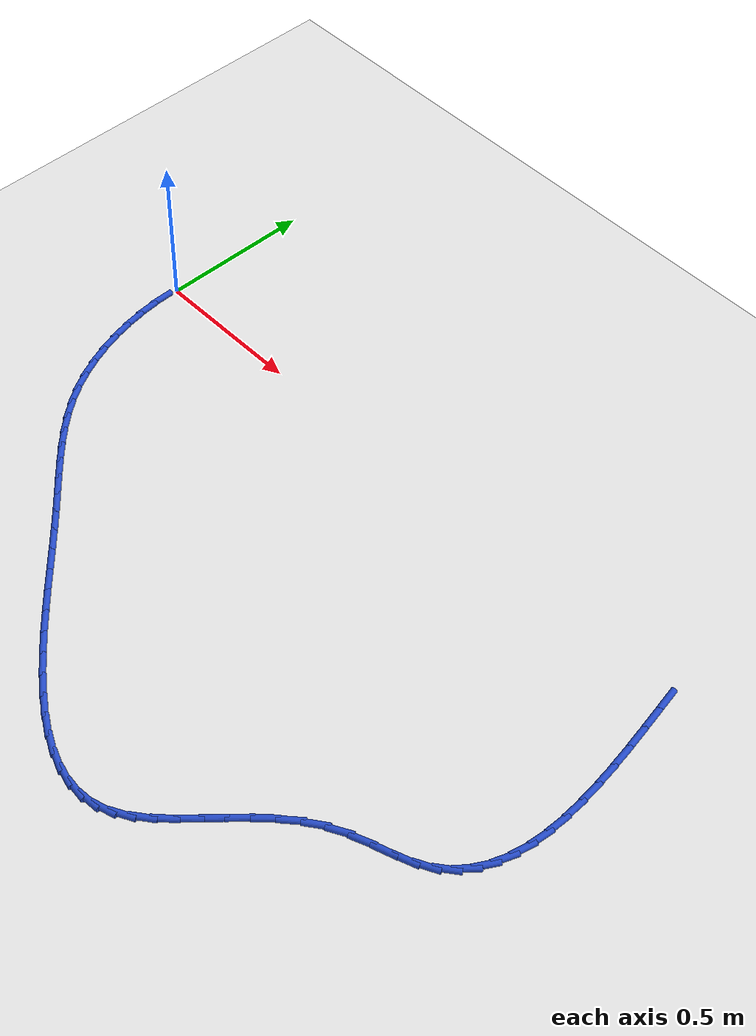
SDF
<sdf version="1.6">
 <world name="default">
  <model name="ground_plane">
   <static>1</static>
   <link name="link">
    <collision name="collision">
     <geometry><plane><normal>0 0 1</normal><size>100 100</size></plane></geometry>
     <surface><friction><ode><mu>100</mu><mu2>50</mu2></ode></friction></surface>
    </collision>
    <visual name="visual">
     <cast_shadows>0</cast_shadows>
     <geometry><plane><normal>0 0 1</normal><size>100 100</size></plane></geometry>
     <material>
      <script><uri>file://media/materials/scripts/gazebo.material</uri><name>Gazebo/WhiteGlow</name></script>
     </material>
    </visual>
   </link>
  </model>
  <model name="line">
   <link name="link_59">
    <pose>2.1289913416677932 -0.047618712083657345 0.01 0 1.57 -1.3797121177105913</pose>
    <collision name="collision">
     <geometry><cylinder><radius>0.01</radius><length>0.08</length></cylinder></geometry>
    </collision>
    <visual name="visual">
     <material>
      <script><name>Gazebo/Blue</name><uri>file://media/materials/scripts/gazebo.material</uri></script>
     </material>
     <geometry><cylinder><radius>0.01</radius><length>0.08</length></cylinder></geometry>
    </visual>
   </link>
   <link name="link_60">
    <pose>2.143507990243397 -0.12266172104317931 0.01 0 1.57 -1.3843831992801103</pose>
    <collision name="collision">
     <geometry><cylinder><radius>0.01</radius><length>0.08</length></cylinder></geometry>
    </collision>
    <visual name="visual">
     <material>
      <script><name>Gazebo/Blue</name><uri>file://media/materials/scripts/gazebo.material</uri></script>
     </material>
     <geometry><cylinder><radius>0.01</radius><length>0.08</length></cylinder></geometry>
    </visual>
   </link>
   <link name="link_61">
    <pose>2.157550200082876 -0.19711558082772612 0.01 0 1.57 -1.3963424579430452</pose>
    <collision name="collision">
     <geometry><cylinder><radius>0.01</radius><length>0.08</length></cylinder></geometry>
    </collision>
    <visual name="visual">
     <material>
      <script><name>Gazebo/Blue</name><uri>file://media/materials/scripts/gazebo.material</uri></script>
     </material>
     <geometry><cylinder><radius>0.01</radius><length>0.08</length></cylinder></geometry>
    </visual>
   </link>
   <link name="link_62">
    <pose>2.1704883425264825 -0.27052536902936475 0.01 0 1.57 -1.4162287807228449</pose>
    <collision name="collision">
     <geometry><cylinder><radius>0.01</radius><length>0.08</length></cylinder></geometry>
    </collision>
    <visual name="visual">
     <material>
      <script><name>Gazebo/Blue</name><uri>file://media/materials/scripts/gazebo.material</uri></script>
     </material>
     <geometry><cylinder><radius>0.01</radius><length>0.08</length></cylinder></geometry>
    </visual>
   </link>
   <link name="link_63">
    <pose>2.1816927889144733 -0.34243616324016285 0.01 0 1.57 -1.4450831962217117</pose>
    <collision name="collision">
     <geometry><cylinder><radius>0.01</radius><length>0.08</length></cylinder></geometry>
    </collision>
    <visual name="visual">
     <material>
      <script><name>Gazebo/Blue</name><uri>file://media/materials/scripts/gazebo.material</uri></script>
     </material>
     <geometry><cylinder><radius>0.01</radius><length>0.08</length></cylinder></geometry>
    </visual>
   </link>
   <link name="link_64">
    <pose>2.1905339105871007 -0.41239304105218483 0.01 0 1.57 -1.4844337669960537</pose>
    <collision name="collision">
     <geometry><cylinder><radius>0.01</radius><length>0.08</length></cylinder></geometry>
    </collision>
    <visual name="visual">
     <material>
      <script><name>Gazebo/Blue</name><uri>file://media/materials/scripts/gazebo.material</uri></script>
     </material>
     <geometry><cylinder><radius>0.01</radius><length>0.08</length></cylinder></geometry>
    </visual>
   </link>
   <link name="link_65">
    <pose>2.19638207888462 -0.4799410800574983 0.01 0 1.57 -1.5364029823966878</pose>
    <collision name="collision">
     <geometry><cylinder><radius>0.01</radius><length>0.08</length></cylinder></geometry>
    </collision>
    <visual name="visual">
     <material>
      <script><name>Gazebo/Blue</name><uri>file://media/materials/scripts/gazebo.material</uri></script>
     </material>
     <geometry><cylinder><radius>0.01</radius><length>0.08</length></cylinder></geometry>
    </visual>
   </link>
   <link name="link_66">
    <pose>2.1986076651472857 -0.5446253578481708 0.01 0 1.57 1.5377829070964626</pose>
    <collision name="collision">
     <geometry><cylinder><radius>0.01</radius><length>0.08</length></cylinder></geometry>
    </collision>
    <visual name="visual">
     <material>
      <script><name>Gazebo/Blue</name><uri>file://media/materials/scripts/gazebo.material</uri></script>
     </material>
     <geometry><cylinder><radius>0.01</radius><length>0.08</length></cylinder></geometry>
    </visual>
   </link>
   <link name="link_67">
    <pose>2.196581040715351 -0.6059909520162666 0.01 0 1.57 1.4514114737993127</pose>
    <collision name="collision">
     <geometry><cylinder><radius>0.01</radius><length>0.08</length></cylinder></geometry>
    </collision>
    <visual name="visual">
     <material>
      <script><name>Gazebo/Blue</name><uri>file://media/materials/scripts/gazebo.material</uri></script>
     </material>
     <geometry><cylinder><radius>0.01</radius><length>0.08</length></cylinder></geometry>
    </visual>
   </link>
   <link name="link_68">
    <pose>2.189672576929072 -0.6635829401538536 0.01 0 1.57 1.3421250283683968</pose>
    <collision name="collision">
     <geometry><cylinder><radius>0.01</radius><length>0.08</length></cylinder></geometry>
    </collision>
    <visual name="visual">
     <material>
      <script><name>Gazebo/Blue</name><uri>file://media/materials/scripts/gazebo.material</uri></script>
     </material>
     <geometry><cylinder><radius>0.01</radius><length>0.08</length></cylinder></geometry>
    </visual>
   </link>
   <link name="link_69">
    <pose>2.1772526451287018 -0.7169463998529981 0.01 0 1.57 1.2065256583441981</pose>
    <collision name="collision">
     <geometry><cylinder><radius>0.01</radius><length>0.08</length></cylinder></geometry>
    </collision>
    <visual name="visual">
     <material>
      <script><name>Gazebo/Blue</name><uri>file://media/materials/scripts/gazebo.material</uri></script>
     </material>
     <geometry><cylinder><radius>0.01</radius><length>0.08</length></cylinder></geometry>
    </visual>
   </link>
   <link name="link_70">
    <pose>2.1586916166544956 -0.7656264087057676 0.01 0 1.57 1.0438798917560377</pose>
    <collision name="collision">
     <geometry><cylinder><radius>0.01</radius><length>0.08</length></cylinder></geometry>
    </collision>
    <visual name="visual">
     <material>
      <script><name>Gazebo/Blue</name><uri>file://media/materials/scripts/gazebo.material</uri></script>
     </material>
     <geometry><cylinder><radius>0.01</radius><length>0.08</length></cylinder></geometry>
    </visual>
   </link>
   <link name="link_71">
    <pose>2.1333598628467074 -0.809168044304227 0.01 0 1.57 0.8590648294826007</pose>
    <collision name="collision">
     <geometry><cylinder><radius>0.01</radius><length>0.08</length></cylinder></geometry>
    </collision>
    <visual name="visual">
     <material>
      <script><name>Gazebo/Blue</name><uri>file://media/materials/scripts/gazebo.material</uri></script>
     </material>
     <geometry><cylinder><radius>0.01</radius><length>0.08</length></cylinder></geometry>
    </visual>
   </link>
   <link name="link_72">
    <pose>2.1006277550455916 -0.8471163842404434 0.01 0 1.57 0.6640363560134465</pose>
    <collision name="collision">
     <geometry><cylinder><radius>0.01</radius><length>0.08</length></cylinder></geometry>
    </collision>
    <visual name="visual">
     <material>
      <script><name>Gazebo/Blue</name><uri>file://media/materials/scripts/gazebo.material</uri></script>
     </material>
     <geometry><cylinder><radius>0.01</radius><length>0.08</length></cylinder></geometry>
    </visual>
   </link>
   <link name="link_73">
    <pose>2.059865664591403 -0.8790165061064839 0.01 0 1.57 0.4783222069656357</pose>
    <collision name="collision">
     <geometry><cylinder><radius>0.01</radius><length>0.08</length></cylinder></geometry>
    </collision>
    <visual name="visual">
     <material>
      <script><name>Gazebo/Blue</name><uri>file://media/materials/scripts/gazebo.material</uri></script>
     </material>
     <geometry><cylinder><radius>0.01</radius><length>0.08</length></cylinder></geometry>
    </visual>
   </link>
   <link name="link_74">
    <pose>2.010585946106677 -0.9045670628514014 0.01 0 1.57 0.3619888029676721</pose>
    <collision name="collision">
     <geometry><cylinder><radius>0.01</radius><length>0.08</length></cylinder></geometry>
    </collision>
    <visual name="visual">
     <material>
      <script><name>Gazebo/Blue</name><uri>file://media/materials/scripts/gazebo.material</uri></script>
     </material>
     <geometry><cylinder><radius>0.01</radius><length>0.08</length></cylinder></geometry>
    </visual>
   </link>
   <link name="link_75">
    <pose>1.9544726935257095 -0.9258157560919787 0.01 0 1.57 0.336392113360163</pose>
    <collision name="collision">
     <geometry><cylinder><radius>0.01</radius><length>0.08</length></cylinder></geometry>
    </collision>
    <visual name="visual">
     <material>
      <script><name>Gazebo/Blue</name><uri>file://media/materials/scripts/gazebo.material</uri></script>
     </material>
     <geometry><cylinder><radius>0.01</radius><length>0.08</length></cylinder></geometry>
    </visual>
   </link>
   <link name="link_76">
    <pose>1.894906309661774 -0.946645089665808 0.01 0 1.57 0.38777023900922203</pose>
    <collision name="collision">
     <geometry><cylinder><radius>0.01</radius><length>0.08</length></cylinder></geometry>
    </collision>
    <visual name="visual">
     <material>
      <script><name>Gazebo/Blue</name><uri>file://media/materials/scripts/gazebo.material</uri></script>
     </material>
     <geometry><cylinder><radius>0.01</radius><length>0.08</length></cylinder></geometry>
    </visual>
   </link>
   <link name="link_77">
    <pose>1.8353122712137762 -0.970986321305764 0.01 0 1.57 0.5100252837869866</pose>
    <collision name="collision">
     <geometry><cylinder><radius>0.01</radius><length>0.08</length></cylinder></geometry>
    </collision>
    <visual name="visual">
     <material>
      <script><name>Gazebo/Blue</name><uri>file://media/materials/scripts/gazebo.material</uri></script>
     </material>
     <geometry><cylinder><radius>0.01</radius><length>0.08</length></cylinder></geometry>
    </visual>
   </link>
   <link name="link_78">
    <pose>1.7789426437173637 -1.0025190349391135 0.01 0 1.57 0.6423283948667003</pose>
    <collision name="collision">
     <geometry><cylinder><radius>0.01</radius><length>0.08</length></cylinder></geometry>
    </collision>
    <visual name="visual">
     <material>
      <script><name>Gazebo/Blue</name><uri>file://media/materials/scripts/gazebo.material</uri></script>
     </material>
     <geometry><cylinder><radius>0.01</radius><length>0.08</length></cylinder></geometry>
    </visual>
   </link>
   <link name="link_79">
    <pose>1.7267420135573026 -1.0415739409352622 0.01 0 1.57 0.7403980165275806</pose>
    <collision name="collision">
     <geometry><cylinder><radius>0.01</radius><length>0.08</length></cylinder></geometry>
    </collision>
    <visual name="visual">
     <material>
      <script><name>Gazebo/Blue</name><uri>file://media/materials/scripts/gazebo.material</uri></script>
     </material>
     <geometry><cylinder><radius>0.01</radius><length>0.08</length></cylinder></geometry>
    </visual>
   </link>
   <link name="link_80">
    <pose>1.678014999535757 -1.086101644053123 0.01 0 1.57 0.805808867911503</pose>
    <collision name="collision">
     <geometry><cylinder><radius>0.01</radius><length>0.08</length></cylinder></geometry>
    </collision>
    <visual name="visual">
     <material>
      <script><name>Gazebo/Blue</name><uri>file://media/materials/scripts/gazebo.material</uri></script>
     </material>
     <geometry><cylinder><radius>0.01</radius><length>0.08</length></cylinder></geometry>
    </visual>
   </link>
   <link name="link_81">
    <pose>1.6320312108521224 -1.134001939174112 0.01 0 1.57 0.8411865182189052</pose>
    <collision name="collision">
     <geometry><cylinder><radius>0.01</radius><length>0.08</length></cylinder></geometry>
    </collision>
    <visual name="visual">
     <material>
      <script><name>Gazebo/Blue</name><uri>file://media/materials/scripts/gazebo.material</uri></script>
     </material>
     <geometry><cylinder><radius>0.01</radius><length>0.08</length></cylinder></geometry>
    </visual>
   </link>
   <link name="link_82">
    <pose>1.5880602567057969 -1.1831746211796437 0.01 0 1.57 0.847453326915146</pose>
    <collision name="collision">
     <geometry><cylinder><radius>0.01</radius><length>0.08</length></cylinder></geometry>
    </collision>
    <visual name="visual">
     <material>
      <script><name>Gazebo/Blue</name><uri>file://media/materials/scripts/gazebo.material</uri></script>
     </material>
     <geometry><cylinder><radius>0.01</radius><length>0.08</length></cylinder></geometry>
    </visual>
   </link>
   <link name="link_83">
    <pose>1.5453717462961751 -1.2315194849511337 0.01 0 1.57 0.8228479147999062</pose>
    <collision name="collision">
     <geometry><cylinder><radius>0.01</radius><length>0.08</length></cylinder></geometry>
    </collision>
    <visual name="visual">
     <material>
      <script><name>Gazebo/Blue</name><uri>file://media/materials/scripts/gazebo.material</uri></script>
     </material>
     <geometry><cylinder><radius>0.01</radius><length>0.08</length></cylinder></geometry>
    </visual>
   </link>
   <link name="link_84">
    <pose>1.5032352888226528 -1.2769363253699972 0.01 0 1.57 0.7621121188456168</pose>
    <collision name="collision">
     <geometry><cylinder><radius>0.01</radius><length>0.08</length></cylinder></geometry>
    </collision>
    <visual name="visual">
     <material>
      <script><name>Gazebo/Blue</name><uri>file://media/materials/scripts/gazebo.material</uri></script>
     </material>
     <geometry><cylinder><radius>0.01</radius><length>0.08</length></cylinder></geometry>
    </visual>
   </link>
   <link name="link_85">
    <pose>1.4609204934846263 -1.3173249373176508 0.01 0 1.57 0.6558600503562217</pose>
    <collision name="collision">
     <geometry><cylinder><radius>0.01</radius><length>0.08</length></cylinder></geometry>
    </collision>
    <visual name="visual">
     <material>
      <script><name>Gazebo/Blue</name><uri>file://media/materials/scripts/gazebo.material</uri></script>
     </material>
     <geometry><cylinder><radius>0.01</radius><length>0.08</length></cylinder></geometry>
    </visual>
   </link>
   <link name="link_86">
    <pose>1.4176969694814925 -1.3505851156755087 0.01 0 1.57 0.4919470904377541</pose>
    <collision name="collision">
     <geometry><cylinder><radius>0.01</radius><length>0.08</length></cylinder></geometry>
    </collision>
    <visual name="visual">
     <material>
      <script><name>Gazebo/Blue</name><uri>file://media/materials/scripts/gazebo.material</uri></script>
     </material>
     <geometry><cylinder><radius>0.01</radius><length>0.08</length></cylinder></geometry>
    </visual>
   </link>
   <link name="link_87">
    <pose>1.372837081699804 -1.374625161386918 0.01 0 1.57 0.2833876593402131</pose>
    <collision name="collision">
     <geometry><cylinder><radius>0.01</radius><length>0.08</length></cylinder></geometry>
    </collision>
    <visual name="visual">
     <material>
      <script><name>Gazebo/Blue</name><uri>file://media/materials/scripts/gazebo.material</uri></script>
     </material>
     <geometry><cylinder><radius>0.01</radius><length>0.08</length></cylinder></geometry>
    </visual>
   </link>
   <link name="link_88">
    <pose>1.3259165131332078 -1.3882896364642696 0.01 0 1.57 0.07977477088524934</pose>
    <collision name="collision">
     <geometry><cylinder><radius>0.01</radius><length>0.08</length></cylinder></geometry>
    </collision>
    <visual name="visual">
     <material>
      <script><name>Gazebo/Blue</name><uri>file://media/materials/scripts/gazebo.material</uri></script>
     </material>
     <geometry><cylinder><radius>0.01</radius><length>0.08</length></cylinder></geometry>
    </visual>
   </link>
   <link name="link_89">
    <pose>1.2770844928046101 -1.3921934845949768 0.01 0 1.57 -0.09951038135371859</pose>
    <collision name="collision">
     <geometry><cylinder><radius>0.01</radius><length>0.08</length></cylinder></geometry>
    </collision>
    <visual name="visual">
     <material>
      <script><name>Gazebo/Blue</name><uri>file://media/materials/scripts/gazebo.material</uri></script>
     </material>
     <geometry><cylinder><radius>0.01</radius><length>0.08</length></cylinder></geometry>
    </visual>
   </link>
   <link name="link_90">
    <pose>1.2265540279123606 -1.3871485154672736 0.01 0 1.57 -0.24819681581301584</pose>
    <collision name="collision">
     <geometry><cylinder><radius>0.01</radius><length>0.08</length></cylinder></geometry>
    </collision>
    <visual name="visual">
     <material>
      <script><name>Gazebo/Blue</name><uri>file://media/materials/scripts/gazebo.material</uri></script>
     </material>
     <geometry><cylinder><radius>0.01</radius><length>0.08</length></cylinder></geometry>
    </visual>
   </link>
   <link name="link_91">
    <pose>1.174538125654806 -1.373966538769392 0.01 0 1.57 -0.36736446682010715</pose>
    <collision name="collision">
     <geometry><cylinder><radius>0.01</radius><length>0.08</length></cylinder></geometry>
    </collision>
    <visual name="visual">
     <material>
      <script><name>Gazebo/Blue</name><uri>file://media/materials/scripts/gazebo.material</uri></script>
     </material>
     <geometry><cylinder><radius>0.01</radius><length>0.08</length></cylinder></geometry>
    </visual>
   </link>
   <link name="link_92">
    <pose>1.121249793230294 -1.3534593641895665 0.01 0 1.57 -0.4613882647959582</pose>
    <collision name="collision">
     <geometry><cylinder><radius>0.01</radius><length>0.08</length></cylinder></geometry>
    </collision>
    <visual name="visual">
     <material>
      <script><name>Gazebo/Blue</name><uri>file://media/materials/scripts/gazebo.material</uri></script>
     </material>
     <geometry><cylinder><radius>0.01</radius><length>0.08</length></cylinder></geometry>
    </visual>
   </link>
   <link name="link_93">
    <pose>1.0669020378371725 -1.326438801416029 0.01 0 1.57 -0.535149272077838</pose>
    <collision name="collision">
     <geometry><cylinder><radius>0.01</radius><length>0.08</length></cylinder></geometry>
    </collision>
    <visual name="visual">
     <material>
      <script><name>Gazebo/Blue</name><uri>file://media/materials/scripts/gazebo.material</uri></script>
     </material>
     <geometry><cylinder><radius>0.01</radius><length>0.08</length></cylinder></geometry>
    </visual>
   </link>
   <link name="link_94">
    <pose>1.0117078666737895 -1.2937166601370136 0.01 0 1.57 -0.5928667551813014</pose>
    <collision name="collision">
     <geometry><cylinder><radius>0.01</radius><length>0.08</length></cylinder></geometry>
    </collision>
    <visual name="visual">
     <material>
      <script><name>Gazebo/Blue</name><uri>file://media/materials/scripts/gazebo.material</uri></script>
     </material>
     <geometry><cylinder><radius>0.01</radius><length>0.08</length></cylinder></geometry>
    </visual>
   </link>
   <link name="link_95">
    <pose>0.955880286938492 -1.2561047500407527 0.01 0 1.57 -0.6378322620736887</pose>
    <collision name="collision">
     <geometry><cylinder><radius>0.01</radius><length>0.08</length></cylinder></geometry>
    </collision>
    <visual name="visual">
     <material>
      <script><name>Gazebo/Blue</name><uri>file://media/materials/scripts/gazebo.material</uri></script>
     </material>
     <geometry><cylinder><radius>0.01</radius><length>0.08</length></cylinder></geometry>
    </visual>
   </link>
   <link name="link_96">
    <pose>0.8996323058296283 -1.2144148808154795 0.01 0 1.57 -0.6724873090281045</pose>
    <collision name="collision">
     <geometry><cylinder><radius>0.01</radius><length>0.08</length></cylinder></geometry>
    </collision>
    <visual name="visual">
     <material>
      <script><name>Gazebo/Blue</name><uri>file://media/materials/scripts/gazebo.material</uri></script>
     </material>
     <geometry><cylinder><radius>0.01</radius><length>0.08</length></cylinder></geometry>
    </visual>
   </link>
   <link name="link_97">
    <pose>0.8431769305455463 -1.1694588621494277 0.01 0 1.57 -0.6985825261281517</pose>
    <collision name="collision">
     <geometry><cylinder><radius>0.01</radius><length>0.08</length></cylinder></geometry>
    </collision>
    <visual name="visual">
     <material>
      <script><name>Gazebo/Blue</name><uri>file://media/materials/scripts/gazebo.material</uri></script>
     </material>
     <geometry><cylinder><radius>0.01</radius><length>0.08</length></cylinder></geometry>
    </visual>
   </link>
   <link name="link_98">
    <pose>0.7867271682845935 -1.1220485037308296 0.01 0 1.57 -0.7173236249969153</pose>
    <collision name="collision">
     <geometry><cylinder><radius>0.01</radius><length>0.08</length></cylinder></geometry>
    </collision>
    <visual name="visual">
     <material>
      <script><name>Gazebo/Blue</name><uri>file://media/materials/scripts/gazebo.material</uri></script>
     </material>
     <geometry><cylinder><radius>0.01</radius><length>0.08</length></cylinder></geometry>
    </visual>
   </link>
   <link name="link_99">
    <pose>0.730496026245118 -1.0729956152479194 0.01 0 1.57 -0.7294787509821978</pose>
    <collision name="collision">
     <geometry><cylinder><radius>0.01</radius><length>0.08</length></cylinder></geometry>
    </collision>
    <visual name="visual">
     <material>
      <script><name>Gazebo/Blue</name><uri>file://media/materials/scripts/gazebo.material</uri></script>
     </material>
     <geometry><cylinder><radius>0.01</radius><length>0.08</length></cylinder></geometry>
    </visual>
   </link>
   <link name="link_100">
    <pose>0.6746965116254661 -1.0231120063889285 0.01 0 1.57 -0.7354446055286109</pose>
    <collision name="collision">
     <geometry><cylinder><radius>0.01</radius><length>0.08</length></cylinder></geometry>
    </collision>
    <visual name="visual">
     <material>
      <script><name>Gazebo/Blue</name><uri>file://media/materials/scripts/gazebo.material</uri></script>
     </material>
     <geometry><cylinder><radius>0.01</radius><length>0.08</length></cylinder></geometry>
    </visual>
   </link>
   <link name="link_101">
    <pose>0.6195416316239873 -0.9732094868420915 0.01 0 1.57 -0.7352731299944015</pose>
    <collision name="collision">
     <geometry><cylinder><radius>0.01</radius><length>0.08</length></cylinder></geometry>
    </collision>
    <visual name="visual">
     <material>
      <script><name>Gazebo/Blue</name><uri>file://media/materials/scripts/gazebo.material</uri></script>
     </material>
     <geometry><cylinder><radius>0.01</radius><length>0.08</length></cylinder></geometry>
    </visual>
   </link>
   <link name="link_102">
    <pose>0.5652443934390288 -0.9240998662956412 0.01 0 1.57 -0.7286578617532233</pose>
    <collision name="collision">
     <geometry><cylinder><radius>0.01</radius><length>0.08</length></cylinder></geometry>
    </collision>
    <visual name="visual">
     <material>
      <script><name>Gazebo/Blue</name><uri>file://media/materials/scripts/gazebo.material</uri></script>
     </material>
     <geometry><cylinder><radius>0.01</radius><length>0.08</length></cylinder></geometry>
    </visual>
   </link>
   <link name="link_103">
    <pose>0.512017804268938 -0.8765949544378105 0.01 0 1.57 -0.7162113600398791</pose>
    <collision name="collision">
     <geometry><cylinder><radius>0.01</radius><length>0.08</length></cylinder></geometry>
    </collision>
    <visual name="visual">
     <material>
      <script><name>Gazebo/Blue</name><uri>file://media/materials/scripts/gazebo.material</uri></script>
     </material>
     <geometry><cylinder><radius>0.01</radius><length>0.08</length></cylinder></geometry>
    </visual>
   </link>
   <link name="link_104">
    <pose>0.46007870252604294 -0.8313878342580898 0.01 0 1.57 -0.708365953665782</pose>
    <collision name="collision">
     <geometry><cylinder><radius>0.01</radius><length>0.08</length></cylinder></geometry>
    </collision>
    <visual name="visual">
     <material>
      <script><name>Gazebo/Blue</name><uri>file://media/materials/scripts/gazebo.material</uri></script>
     </material>
     <geometry><cylinder><radius>0.01</radius><length>0.08</length></cylinder></geometry>
    </visual>
   </link>
   <link name="link_105">
    <pose>0.40967503860836774 -0.7882074496059894 0.01 0 1.57 -0.7113676421739532</pose>
    <collision name="collision">
     <geometry><cylinder><radius>0.01</radius><length>0.08</length></cylinder></geometry>
    </collision>
    <visual name="visual">
     <material>
      <script><name>Gazebo/Blue</name><uri>file://media/materials/scripts/gazebo.material</uri></script>
     </material>
     <geometry><cylinder><radius>0.01</radius><length>0.08</length></cylinder></geometry>
    </visual>
   </link>
   <link name="link_106">
    <pose>0.36106988235111215 -0.7463142033223608 0.01 0 1.57 -0.7263642686445341</pose>
    <collision name="collision">
     <geometry><cylinder><radius>0.01</radius><length>0.08</length></cylinder></geometry>
    </collision>
    <visual name="visual">
     <material>
      <script><name>Gazebo/Blue</name><uri>file://media/materials/scripts/gazebo.material</uri></script>
     </material>
     <geometry><cylinder><radius>0.01</radius><length>0.08</length></cylinder></geometry>
    </visual>
   </link>
   <link name="link_107">
    <pose>0.31452640403727944 -0.7049653854394051 0.01 0 1.57 -0.7542590695103959</pose>
    <collision name="collision">
     <geometry><cylinder><radius>0.01</radius><length>0.08</length></cylinder></geometry>
    </collision>
    <visual name="visual">
     <material>
      <script><name>Gazebo/Blue</name><uri>file://media/materials/scripts/gazebo.material</uri></script>
     </material>
     <geometry><cylinder><radius>0.01</radius><length>0.08</length></cylinder></geometry>
    </visual>
   </link>
   <link name="link_108">
    <pose>0.27030777394987293 -0.6634182859893244 0.01 0 1.57 -0.7955914935629071</pose>
    <collision name="collision">
     <geometry><cylinder><radius>0.01</radius><length>0.08</length></cylinder></geometry>
    </collision>
    <visual name="visual">
     <material>
      <script><name>Gazebo/Blue</name><uri>file://media/materials/scripts/gazebo.material</uri></script>
     </material>
     <geometry><cylinder><radius>0.01</radius><length>0.08</length></cylinder></geometry>
    </visual>
   </link>
   <link name="link_109">
    <pose>0.22867716237189709 -0.6209301950043207 0.01 0 1.57 -0.8503133440663992</pose>
    <collision name="collision">
     <geometry><cylinder><radius>0.01</radius><length>0.08</length></cylinder></geometry>
    </collision>
    <visual name="visual">
     <material>
      <script><name>Gazebo/Blue</name><uri>file://media/materials/scripts/gazebo.material</uri></script>
     </material>
     <geometry><cylinder><radius>0.01</radius><length>0.08</length></cylinder></geometry>
    </visual>
   </link>
   <link name="link_110">
    <pose>0.18989773958635486 -0.5767584025165955 0.01 0 1.57 -0.9175281117357754</pose>
    <collision name="collision">
     <geometry><cylinder><radius>0.01</radius><length>0.08</length></cylinder></geometry>
    </collision>
    <visual name="visual">
     <material>
      <script><name>Gazebo/Blue</name><uri>file://media/materials/scripts/gazebo.material</uri></script>
     </material>
     <geometry><cylinder><radius>0.01</radius><length>0.08</length></cylinder></geometry>
    </visual>
   </link>
   <link name="link_111">
    <pose>0.15423267587624978 -0.5301601985583507 0.01 0 1.57 -0.995155525959948</pose>
    <collision name="collision">
     <geometry><cylinder><radius>0.01</radius><length>0.08</length></cylinder></geometry>
    </collision>
    <visual name="visual">
     <material>
      <script><name>Gazebo/Blue</name><uri>file://media/materials/scripts/gazebo.material</uri></script>
     </material>
     <geometry><cylinder><radius>0.01</radius><length>0.08</length></cylinder></geometry>
    </visual>
   </link>
   <link name="link_112">
    <pose>0.12194350786627482 -0.4804046239919742 0.01 0 1.57 -1.0753342722815864</pose>
    <collision name="collision">
     <geometry><cylinder><radius>0.01</radius><length>0.08</length></cylinder></geometry>
    </collision>
    <visual name="visual">
     <material>
      <script><name>Gazebo/Blue</name><uri>file://media/materials/scripts/gazebo.material</uri></script>
     </material>
     <geometry><cylinder><radius>0.01</radius><length>0.08</length></cylinder></geometry>
    </visual>
   </link>
   <link name="link_113">
    <pose>0.0932224576560844 -0.42725929591714396 0.01 0 1.57 -1.1507371756162157</pose>
    <collision name="collision">
     <geometry><cylinder><radius>0.01</radius><length>0.08</length></cylinder></geometry>
    </collision>
    <visual name="visual">
     <material>
      <script><name>Gazebo/Blue</name><uri>file://media/materials/scripts/gazebo.material</uri></script>
     </material>
     <geometry><cylinder><radius>0.01</radius><length>0.08</length></cylinder></geometry>
    </visual>
   </link>
   <link name="link_114">
    <pose>0.06816819457931277 -0.3711647522397105 0.01 0 1.57 -1.2219880107426344</pose>
    <collision name="collision">
     <geometry><cylinder><radius>0.01</radius><length>0.08</length></cylinder></geometry>
    </collision>
    <visual name="visual">
     <material>
      <script><name>Gazebo/Blue</name><uri>file://media/materials/scripts/gazebo.material</uri></script>
     </material>
     <geometry><cylinder><radius>0.01</radius><length>0.08</length></cylinder></geometry>
    </visual>
   </link>
   <link name="link_115">
    <pose>0.046872769601665434 -0.3126091364860936 0.01 0 1.57 -1.2901968716868242</pose>
    <collision name="collision">
     <geometry><cylinder><radius>0.01</radius><length>0.08</length></cylinder></geometry>
    </collision>
    <visual name="visual">
     <material>
      <script><name>Gazebo/Blue</name><uri>file://media/materials/scripts/gazebo.material</uri></script>
     </material>
     <geometry><cylinder><radius>0.01</radius><length>0.08</length></cylinder></geometry>
    </visual>
   </link>
   <link name="link_116">
    <pose>0.029428233688848702 -0.25208059218271567 0.01 0 1.57 -1.3564209732192523</pose>
    <collision name="collision">
     <geometry><cylinder><radius>0.01</radius><length>0.08</length></cylinder></geometry>
    </collision>
    <visual name="visual">
     <material>
      <script><name>Gazebo/Blue</name><uri>file://media/materials/scripts/gazebo.material</uri></script>
     </material>
     <geometry><cylinder><radius>0.01</radius><length>0.08</length></cylinder></geometry>
    </visual>
   </link>
   <link name="link_117">
    <pose>0.01592663780656805 -0.19006726285599662 0.01 0 1.57 -1.4216718724147765</pose>
    <collision name="collision">
     <geometry><cylinder><radius>0.01</radius><length>0.08</length></cylinder></geometry>
    </collision>
    <visual name="visual">
     <material>
      <script><name>Gazebo/Blue</name><uri>file://media/materials/scripts/gazebo.material</uri></script>
     </material>
     <geometry><cylinder><radius>0.01</radius><length>0.08</length></cylinder></geometry>
    </visual>
   </link>
   <link name="link_118">
    <pose>0.006460032920529192 -0.12705729203235727 0.01 0 1.57 -1.4869303498230315</pose>
    <collision name="collision">
     <geometry><cylinder><radius>0.01</radius><length>0.08</length></cylinder></geometry>
    </collision>
    <visual name="visual">
     <material>
      <script><name>Gazebo/Blue</name><uri>file://media/materials/scripts/gazebo.material</uri></script>
     </material>
     <geometry><cylinder><radius>0.01</radius><length>0.08</length></cylinder></geometry>
    </visual>
   </link>
   <link name="link_119">
    <pose>0.0011204699964378652 -0.06353882323821763 0.01 0 1.57 -1.5531637390973496</pose>
    <collision name="collision">
     <geometry><cylinder><radius>0.01</radius><length>0.08</length></cylinder></geometry>
    </collision>
    <visual name="visual">
     <material>
      <script><name>Gazebo/Blue</name><uri>file://media/materials/scripts/gazebo.material</uri></script>
     </material>
     <geometry><cylinder><radius>0.01</radius><length>0.08</length></cylinder></geometry>
    </visual>
   </link>
  </model>
 </world>
</sdf>
